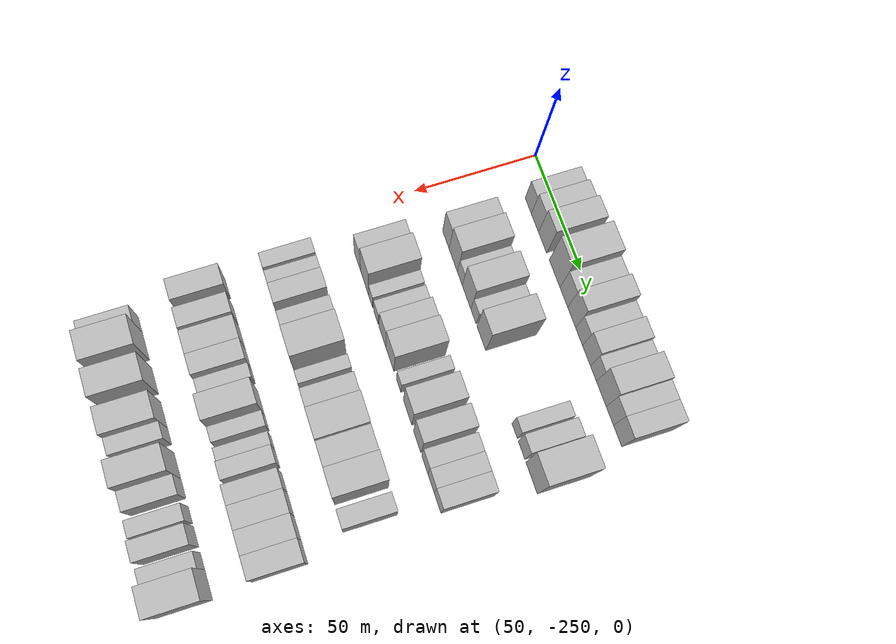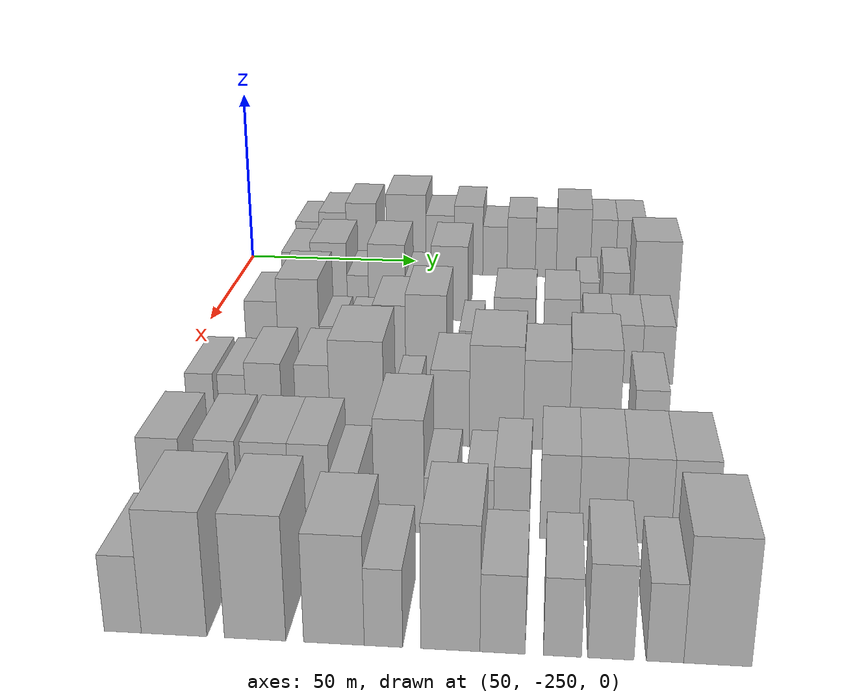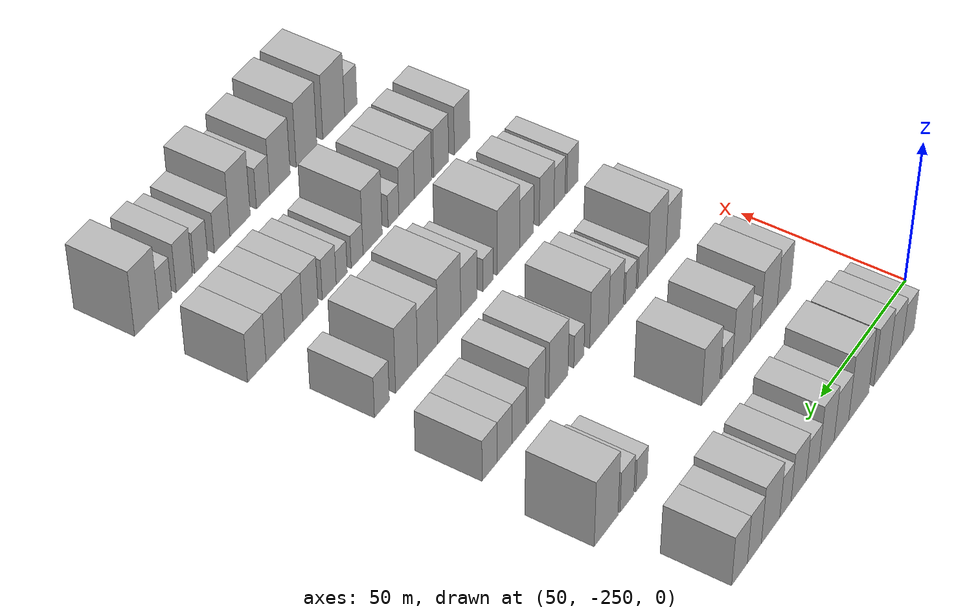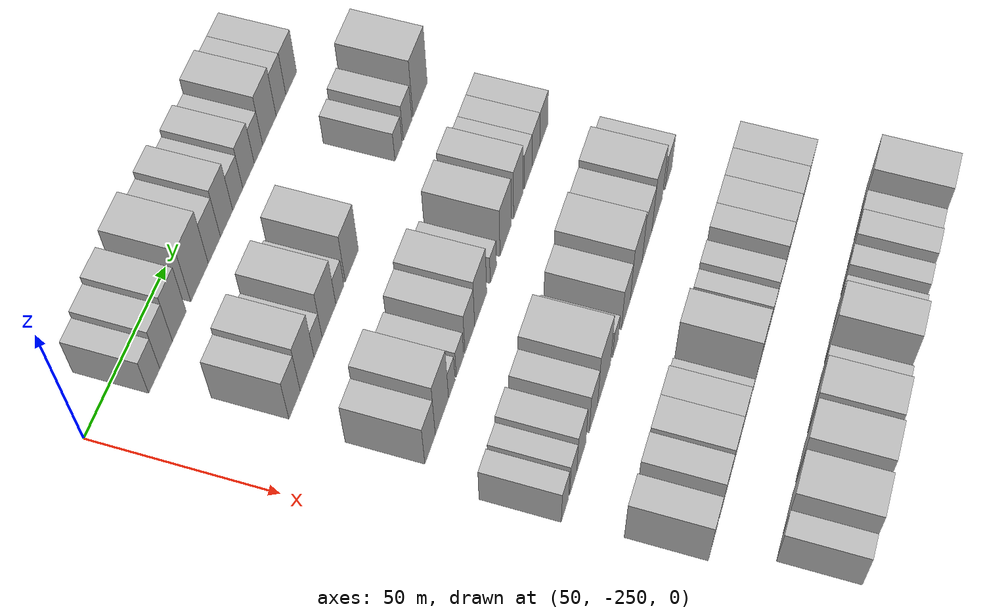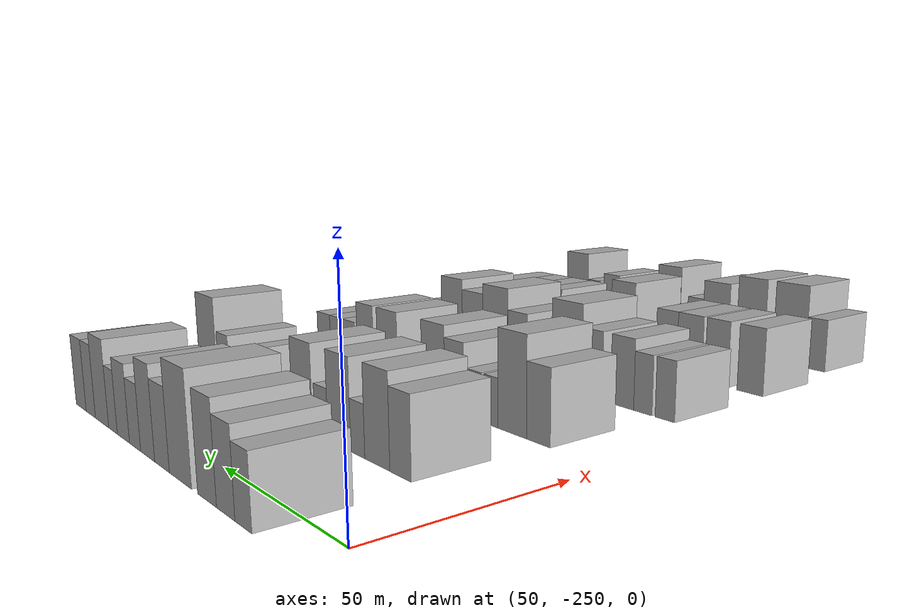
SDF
<sdf version="1.6">
 <world name="default">
  <model name="building_35">
   <static>1</static>
   <pose>50.0000 -230.8784 0 0.000000 0.000000 0.000000</pose>
   <link name="link">
    <pose>0 0 7.50 0 0 0</pose>
    <collision name="collision"><geometry><box><size>20.0000 6.9451 15.0000</size></box></geometry></collision>
    <visual name="visual">
     <cast_shadows>0</cast_shadows>
     <geometry><box><size>20.0000 6.9451 15.0000</size></box></geometry>
     <material>
      <script>
       <uri>model://HANNAS_wall/materials/scripts</uri>
       <uri>model://HANNAS_wall/materials/textures</uri>
       <name>vrc/HANNAS_wall</name>
      </script>
     </material>
    </visual>
   </link>
  </model>
  <model name="building_36">
   <static>1</static>
   <pose>50.0000 -223.3864 0 0.000000 0.000000 0.000000</pose>
   <link name="link">
    <pose>0 0 9.00 0 0 0</pose>
    <collision name="collision"><geometry><box><size>20.0000 8.0389 18.0000</size></box></geometry></collision>
    <visual name="visual">
     <cast_shadows>0</cast_shadows>
     <geometry><box><size>20.0000 8.0389 18.0000</size></box></geometry>
     <material>
      <script>
       <uri>model://HANNAS_wall/materials/scripts</uri>
       <uri>model://HANNAS_wall/materials/textures</uri>
       <name>vrc/HANNAS_wall</name>
      </script>
     </material>
    </visual>
   </link>
  </model>
  <model name="building_37">
   <static>1</static>
   <pose>50.0000 -214.9334 0 0.000000 0.000000 0.000000</pose>
   <link name="link">
    <pose>0 0 10.50 0 0 0</pose>
    <collision name="collision"><geometry><box><size>20.0000 8.8670 21.0000</size></box></geometry></collision>
    <visual name="visual">
     <cast_shadows>0</cast_shadows>
     <geometry><box><size>20.0000 8.8670 21.0000</size></box></geometry>
     <material>
      <script>
       <uri>model://HANNAS_wall/materials/scripts</uri>
       <uri>model://HANNAS_wall/materials/textures</uri>
       <name>vrc/HANNAS_wall</name>
      </script>
     </material>
    </visual>
   </link>
  </model>
  <model name="building_38">
   <static>1</static>
   <pose>50.0000 -201.6796 0 0.000000 0.000000 0.000000</pose>
   <link name="link">
    <pose>0 0 12.00 0 0 0</pose>
    <collision name="collision"><geometry><box><size>20.0000 11.6407 24.0000</size></box></geometry></collision>
    <visual name="visual">
     <cast_shadows>0</cast_shadows>
     <geometry><box><size>20.0000 11.6407 24.0000</size></box></geometry>
     <material>
      <script>
       <uri>model://HANNAS_wall/materials/scripts</uri>
       <uri>model://HANNAS_wall/materials/textures</uri>
       <name>vrc/HANNAS_wall</name>
      </script>
     </material>
    </visual>
   </link>
  </model>
  <model name="building_39">
   <static>1</static>
   <pose>50.0000 -191.7165 0 0.000000 0.000000 0.000000</pose>
   <link name="link">
    <pose>0 0 9.00 0 0 0</pose>
    <collision name="collision"><geometry><box><size>20.0000 8.2855 18.0000</size></box></geometry></collision>
    <visual name="visual">
     <cast_shadows>0</cast_shadows>
     <geometry><box><size>20.0000 8.2855 18.0000</size></box></geometry>
     <material>
      <script>
       <uri>model://HANNAS_wall/materials/scripts</uri>
       <uri>model://HANNAS_wall/materials/textures</uri>
       <name>vrc/HANNAS_wall</name>
      </script>
     </material>
    </visual>
   </link>
  </model>
  <model name="building_40">
   <static>1</static>
   <pose>50.0000 -183.3514 0 0.000000 0.000000 0.000000</pose>
   <link name="link">
    <pose>0 0 10.50 0 0 0</pose>
    <collision name="collision"><geometry><box><size>20.0000 8.4446 21.0000</size></box></geometry></collision>
    <visual name="visual">
     <cast_shadows>0</cast_shadows>
     <geometry><box><size>20.0000 8.4446 21.0000</size></box></geometry>
     <material>
      <script>
       <uri>model://HANNAS_wall/materials/scripts</uri>
       <uri>model://HANNAS_wall/materials/textures</uri>
       <name>vrc/HANNAS_wall</name>
      </script>
     </material>
    </visual>
   </link>
  </model>
  <model name="building_41">
   <static>1</static>
   <pose>50.0000 -175.5534 0 0.000000 0.000000 0.000000</pose>
   <link name="link">
    <pose>0 0 7.50 0 0 0</pose>
    <collision name="collision"><geometry><box><size>20.0000 7.1515 15.0000</size></box></geometry></collision>
    <visual name="visual">
     <cast_shadows>0</cast_shadows>
     <geometry><box><size>20.0000 7.1515 15.0000</size></box></geometry>
     <material>
      <script>
       <uri>model://HANNAS_wall/materials/scripts</uri>
       <uri>model://HANNAS_wall/materials/textures</uri>
       <name>vrc/HANNAS_wall</name>
      </script>
     </material>
    </visual>
   </link>
  </model>
  <model name="building_42">
   <static>1</static>
   <pose>50.0000 -167.8641 0 0.000000 0.000000 0.000000</pose>
   <link name="link">
    <pose>0 0 9.00 0 0 0</pose>
    <collision name="collision"><geometry><box><size>20.0000 8.2270 18.0000</size></box></geometry></collision>
    <visual name="visual">
     <cast_shadows>0</cast_shadows>
     <geometry><box><size>20.0000 8.2270 18.0000</size></box></geometry>
     <material>
      <script>
       <uri>model://HANNAS_wall/materials/scripts</uri>
       <uri>model://HANNAS_wall/materials/textures</uri>
       <name>vrc/HANNAS_wall</name>
      </script>
     </material>
    </visual>
   </link>
  </model>
  <model name="building_43">
   <static>1</static>
   <pose>50.0000 -160.6959 0 0.000000 0.000000 0.000000</pose>
   <link name="link">
    <pose>0 0 7.50 0 0 0</pose>
    <collision name="collision"><geometry><box><size>20.0000 6.1093 15.0000</size></box></geometry></collision>
    <visual name="visual">
     <cast_shadows>0</cast_shadows>
     <geometry><box><size>20.0000 6.1093 15.0000</size></box></geometry>
     <material>
      <script>
       <uri>model://HANNAS_wall/materials/scripts</uri>
       <uri>model://HANNAS_wall/materials/textures</uri>
       <name>vrc/HANNAS_wall</name>
      </script>
     </material>
    </visual>
   </link>
  </model>
  <model name="building_44">
   <static>1</static>
   <pose>50.0000 -152.6926 0 0.000000 0.000000 0.000000</pose>
   <link name="link">
    <pose>0 0 10.50 0 0 0</pose>
    <collision name="collision"><geometry><box><size>20.0000 9.8974 21.0000</size></box></geometry></collision>
    <visual name="visual">
     <cast_shadows>0</cast_shadows>
     <geometry><box><size>20.0000 9.8974 21.0000</size></box></geometry>
     <material>
      <script>
       <uri>model://HANNAS_wall/materials/scripts</uri>
       <uri>model://HANNAS_wall/materials/textures</uri>
       <name>vrc/HANNAS_wall</name>
      </script>
     </material>
    </visual>
   </link>
  </model>
  <model name="building_45">
   <static>1</static>
   <pose>50.0000 -144.0795 0 0.000000 0.000000 0.000000</pose>
   <link name="link">
    <pose>0 0 9.00 0 0 0</pose>
    <collision name="collision"><geometry><box><size>20.0000 7.3288 18.0000</size></box></geometry></collision>
    <visual name="visual">
     <cast_shadows>0</cast_shadows>
     <geometry><box><size>20.0000 7.3288 18.0000</size></box></geometry>
     <material>
      <script>
       <uri>model://HANNAS_wall/materials/scripts</uri>
       <uri>model://HANNAS_wall/materials/textures</uri>
       <name>vrc/HANNAS_wall</name>
      </script>
     </material>
    </visual>
   </link>
  </model>
  <model name="building_46">
   <static>1</static>
   <pose>50.0000 -136.3169 0 0.000000 0.000000 0.000000</pose>
   <link name="link">
    <pose>0 0 9.00 0 0 0</pose>
    <collision name="collision"><geometry><box><size>20.0000 8.1964 18.0000</size></box></geometry></collision>
    <visual name="visual">
     <cast_shadows>0</cast_shadows>
     <geometry><box><size>20.0000 8.1964 18.0000</size></box></geometry>
     <material>
      <script>
       <uri>model://HANNAS_wall/materials/scripts</uri>
       <uri>model://HANNAS_wall/materials/textures</uri>
       <name>vrc/HANNAS_wall</name>
      </script>
     </material>
    </visual>
   </link>
  </model>
  <model name="building_160">
   <static>1</static>
   <pose>85.0000 -227.2100 0 0.000000 0.000000 0.000000</pose>
   <link name="link">
    <pose>0 0 9.00 0 0 0</pose>
    <collision name="collision"><geometry><box><size>20.0000 7.7865 18.0000</size></box></geometry></collision>
    <visual name="visual">
     <cast_shadows>0</cast_shadows>
     <geometry><box><size>20.0000 7.7865 18.0000</size></box></geometry>
     <material>
      <script>
       <uri>model://HANNAS_wall/materials/scripts</uri>
       <uri>model://HANNAS_wall/materials/textures</uri>
       <name>vrc/HANNAS_wall</name>
      </script>
     </material>
    </visual>
   </link>
  </model>
  <model name="building_161">
   <static>1</static>
   <pose>85.0000 -218.4707 0 0.000000 0.000000 0.000000</pose>
   <link name="link">
    <pose>0 0 10.50 0 0 0</pose>
    <collision name="collision"><geometry><box><size>20.0000 9.6920 21.0000</size></box></geometry></collision>
    <visual name="visual">
     <cast_shadows>0</cast_shadows>
     <geometry><box><size>20.0000 9.6920 21.0000</size></box></geometry>
     <material>
      <script>
       <uri>model://HANNAS_wall/materials/scripts</uri>
       <uri>model://HANNAS_wall/materials/textures</uri>
       <name>vrc/HANNAS_wall</name>
      </script>
     </material>
    </visual>
   </link>
  </model>
  <model name="building_162">
   <static>1</static>
   <pose>85.0000 -210.7383 0 0.000000 0.000000 0.000000</pose>
   <link name="link">
    <pose>0 0 6.00 0 0 0</pose>
    <collision name="collision"><geometry><box><size>20.0000 5.7727 12.0000</size></box></geometry></collision>
    <visual name="visual">
     <cast_shadows>0</cast_shadows>
     <geometry><box><size>20.0000 5.7727 12.0000</size></box></geometry>
     <material>
      <script>
       <uri>model://HANNAS_wall/materials/scripts</uri>
       <uri>model://HANNAS_wall/materials/textures</uri>
       <name>vrc/HANNAS_wall</name>
      </script>
     </material>
    </visual>
   </link>
  </model>
  <model name="building_163">
   <static>1</static>
   <pose>85.0000 -202.8919 0 0.000000 0.000000 0.000000</pose>
   <link name="link">
    <pose>0 0 10.50 0 0 0</pose>
    <collision name="collision"><geometry><box><size>20.0000 9.9202 21.0000</size></box></geometry></collision>
    <visual name="visual">
     <cast_shadows>0</cast_shadows>
     <geometry><box><size>20.0000 9.9202 21.0000</size></box></geometry>
     <material>
      <script>
       <uri>model://HANNAS_wall/materials/scripts</uri>
       <uri>model://HANNAS_wall/materials/textures</uri>
       <name>vrc/HANNAS_wall</name>
      </script>
     </material>
    </visual>
   </link>
  </model>
  <model name="building_164">
   <static>1</static>
   <pose>85.0000 -194.9571 0 0.000000 0.000000 0.000000</pose>
   <link name="link">
    <pose>0 0 6.00 0 0 0</pose>
    <collision name="collision"><geometry><box><size>20.0000 5.9493 12.0000</size></box></geometry></collision>
    <visual name="visual">
     <cast_shadows>0</cast_shadows>
     <geometry><box><size>20.0000 5.9493 12.0000</size></box></geometry>
     <material>
      <script>
       <uri>model://HANNAS_wall/materials/scripts</uri>
       <uri>model://HANNAS_wall/materials/textures</uri>
       <name>vrc/HANNAS_wall</name>
      </script>
     </material>
    </visual>
   </link>
  </model>
  <model name="building_165">
   <static>1</static>
   <pose>85.0000 -186.0331 0 0.000000 0.000000 0.000000</pose>
   <link name="link">
    <pose>0 0 10.50 0 0 0</pose>
    <collision name="collision"><geometry><box><size>20.0000 9.8986 21.0000</size></box></geometry></collision>
    <visual name="visual">
     <cast_shadows>0</cast_shadows>
     <geometry><box><size>20.0000 9.8986 21.0000</size></box></geometry>
     <material>
      <script>
       <uri>model://HANNAS_wall/materials/scripts</uri>
       <uri>model://HANNAS_wall/materials/textures</uri>
       <name>vrc/HANNAS_wall</name>
      </script>
     </material>
    </visual>
   </link>
  </model>
  <model name="building_166">
   <static>1</static>
   <pose>85.0000 -149.3991 0 0.000000 0.000000 0.000000</pose>
   <link name="link">
    <pose>0 0 6.00 0 0 0</pose>
    <collision name="collision"><geometry><box><size>20.0000 5.7898 12.0000</size></box></geometry></collision>
    <visual name="visual">
     <cast_shadows>0</cast_shadows>
     <geometry><box><size>20.0000 5.7898 12.0000</size></box></geometry>
     <material>
      <script>
       <uri>model://HANNAS_wall/materials/scripts</uri>
       <uri>model://HANNAS_wall/materials/textures</uri>
       <name>vrc/HANNAS_wall</name>
      </script>
     </material>
    </visual>
   </link>
  </model>
  <model name="building_167">
   <static>1</static>
   <pose>85.0000 -141.9743 0 0.000000 0.000000 0.000000</pose>
   <link name="link">
    <pose>0 0 7.50 0 0 0</pose>
    <collision name="collision"><geometry><box><size>20.0000 7.0597 15.0000</size></box></geometry></collision>
    <visual name="visual">
     <cast_shadows>0</cast_shadows>
     <geometry><box><size>20.0000 7.0597 15.0000</size></box></geometry>
     <material>
      <script>
       <uri>model://HANNAS_wall/materials/scripts</uri>
       <uri>model://HANNAS_wall/materials/textures</uri>
       <name>vrc/HANNAS_wall</name>
      </script>
     </material>
    </visual>
   </link>
  </model>
  <model name="building_168">
   <static>1</static>
   <pose>85.0000 -131.4744 0 0.000000 0.000000 0.000000</pose>
   <link name="link">
    <pose>0 0 12.00 0 0 0</pose>
    <collision name="collision"><geometry><box><size>20.0000 11.9401 24.0000</size></box></geometry></collision>
    <visual name="visual">
     <cast_shadows>0</cast_shadows>
     <geometry><box><size>20.0000 11.9401 24.0000</size></box></geometry>
     <material>
      <script>
       <uri>model://HANNAS_wall/materials/scripts</uri>
       <uri>model://HANNAS_wall/materials/textures</uri>
       <name>vrc/HANNAS_wall</name>
      </script>
     </material>
    </visual>
   </link>
  </model>
  <model name="building_283">
   <static>1</static>
   <pose>120.0000 -229.0043 0 0.000000 0.000000 0.000000</pose>
   <link name="link">
    <pose>0 0 9.00 0 0 0</pose>
    <collision name="collision"><geometry><box><size>20.0000 7.9378 18.0000</size></box></geometry></collision>
    <visual name="visual">
     <cast_shadows>0</cast_shadows>
     <geometry><box><size>20.0000 7.9378 18.0000</size></box></geometry>
     <material>
      <script>
       <uri>model://HANNAS_wall/materials/scripts</uri>
       <uri>model://HANNAS_wall/materials/textures</uri>
       <name>vrc/HANNAS_wall</name>
      </script>
     </material>
    </visual>
   </link>
  </model>
  <model name="building_284">
   <static>1</static>
   <pose>120.0000 -219.9170 0 0.000000 0.000000 0.000000</pose>
   <link name="link">
    <pose>0 0 12.00 0 0 0</pose>
    <collision name="collision"><geometry><box><size>20.0000 10.2368 24.0000</size></box></geometry></collision>
    <visual name="visual">
     <cast_shadows>0</cast_shadows>
     <geometry><box><size>20.0000 10.2368 24.0000</size></box></geometry>
     <material>
      <script>
       <uri>model://HANNAS_wall/materials/scripts</uri>
       <uri>model://HANNAS_wall/materials/textures</uri>
       <name>vrc/HANNAS_wall</name>
      </script>
     </material>
    </visual>
   </link>
  </model>
  <model name="building_285">
   <static>1</static>
   <pose>120.0000 -212.2229 0 0.000000 0.000000 0.000000</pose>
   <link name="link">
    <pose>0 0 6.00 0 0 0</pose>
    <collision name="collision"><geometry><box><size>20.0000 5.1515 12.0000</size></box></geometry></collision>
    <visual name="visual">
     <cast_shadows>0</cast_shadows>
     <geometry><box><size>20.0000 5.1515 12.0000</size></box></geometry>
     <material>
      <script>
       <uri>model://HANNAS_wall/materials/scripts</uri>
       <uri>model://HANNAS_wall/materials/textures</uri>
       <name>vrc/HANNAS_wall</name>
      </script>
     </material>
    </visual>
   </link>
  </model>
  <model name="building_286">
   <static>1</static>
   <pose>120.0000 -205.7032 0 0.000000 0.000000 0.000000</pose>
   <link name="link">
    <pose>0 0 6.00 0 0 0</pose>
    <collision name="collision"><geometry><box><size>20.0000 5.8879 12.0000</size></box></geometry></collision>
    <visual name="visual">
     <cast_shadows>0</cast_shadows>
     <geometry><box><size>20.0000 5.8879 12.0000</size></box></geometry>
     <material>
      <script>
       <uri>model://HANNAS_wall/materials/scripts</uri>
       <uri>model://HANNAS_wall/materials/textures</uri>
       <name>vrc/HANNAS_wall</name>
      </script>
     </material>
    </visual>
   </link>
  </model>
  <model name="building_287">
   <static>1</static>
   <pose>120.0000 -197.7941 0 0.000000 0.000000 0.000000</pose>
   <link name="link">
    <pose>0 0 9.00 0 0 0</pose>
    <collision name="collision"><geometry><box><size>20.0000 7.9301 18.0000</size></box></geometry></collision>
    <visual name="visual">
     <cast_shadows>0</cast_shadows>
     <geometry><box><size>20.0000 7.9301 18.0000</size></box></geometry>
     <material>
      <script>
       <uri>model://HANNAS_wall/materials/scripts</uri>
       <uri>model://HANNAS_wall/materials/textures</uri>
       <name>vrc/HANNAS_wall</name>
      </script>
     </material>
    </visual>
   </link>
  </model>
  <model name="building_288">
   <static>1</static>
   <pose>120.0000 -188.8305 0 0.000000 0.000000 0.000000</pose>
   <link name="link">
    <pose>0 0 10.50 0 0 0</pose>
    <collision name="collision"><geometry><box><size>20.0000 9.9971 21.0000</size></box></geometry></collision>
    <visual name="visual">
     <cast_shadows>0</cast_shadows>
     <geometry><box><size>20.0000 9.9971 21.0000</size></box></geometry>
     <material>
      <script>
       <uri>model://HANNAS_wall/materials/scripts</uri>
       <uri>model://HANNAS_wall/materials/textures</uri>
       <name>vrc/HANNAS_wall</name>
      </script>
     </material>
    </visual>
   </link>
  </model>
  <model name="building_289">
   <static>1</static>
   <pose>120.0000 -178.1801 0 0.000000 0.000000 0.000000</pose>
   <link name="link">
    <pose>0 0 6.00 0 0 0</pose>
    <collision name="collision"><geometry><box><size>20.0000 5.3039 12.0000</size></box></geometry></collision>
    <visual name="visual">
     <cast_shadows>0</cast_shadows>
     <geometry><box><size>20.0000 5.3039 12.0000</size></box></geometry>
     <material>
      <script>
       <uri>model://HANNAS_wall/materials/scripts</uri>
       <uri>model://HANNAS_wall/materials/textures</uri>
       <name>vrc/HANNAS_wall</name>
      </script>
     </material>
    </visual>
   </link>
  </model>
  <model name="building_290">
   <static>1</static>
   <pose>120.0000 -167.6020 0 0.000000 0.000000 0.000000</pose>
   <link name="link">
    <pose>0 0 10.50 0 0 0</pose>
    <collision name="collision"><geometry><box><size>20.0000 9.8523 21.0000</size></box></geometry></collision>
    <visual name="visual">
     <cast_shadows>0</cast_shadows>
     <geometry><box><size>20.0000 9.8523 21.0000</size></box></geometry>
     <material>
      <script>
       <uri>model://HANNAS_wall/materials/scripts</uri>
       <uri>model://HANNAS_wall/materials/textures</uri>
       <name>vrc/HANNAS_wall</name>
      </script>
     </material>
    </visual>
   </link>
  </model>
  <model name="building_291">
   <static>1</static>
   <pose>120.0000 -156.4090 0 0.000000 0.000000 0.000000</pose>
   <link name="link">
    <pose>0 0 10.50 0 0 0</pose>
    <collision name="collision"><geometry><box><size>20.0000 8.5337 21.0000</size></box></geometry></collision>
    <visual name="visual">
     <cast_shadows>0</cast_shadows>
     <geometry><box><size>20.0000 8.5337 21.0000</size></box></geometry>
     <material>
      <script>
       <uri>model://HANNAS_wall/materials/scripts</uri>
       <uri>model://HANNAS_wall/materials/textures</uri>
       <name>vrc/HANNAS_wall</name>
      </script>
     </material>
    </visual>
   </link>
  </model>
  <model name="building_292">
   <static>1</static>
   <pose>120.0000 -147.6357 0 0.000000 0.000000 0.000000</pose>
   <link name="link">
    <pose>0 0 7.50 0 0 0</pose>
    <collision name="collision"><geometry><box><size>20.0000 7.0130 15.0000</size></box></geometry></collision>
    <visual name="visual">
     <cast_shadows>0</cast_shadows>
     <geometry><box><size>20.0000 7.0130 15.0000</size></box></geometry>
     <material>
      <script>
       <uri>model://HANNAS_wall/materials/scripts</uri>
       <uri>model://HANNAS_wall/materials/textures</uri>
       <name>vrc/HANNAS_wall</name>
      </script>
     </material>
    </visual>
   </link>
  </model>
  <model name="building_293">
   <static>1</static>
   <pose>120.0000 -140.5326 0 0.000000 0.000000 0.000000</pose>
   <link name="link">
    <pose>0 0 7.50 0 0 0</pose>
    <collision name="collision"><geometry><box><size>20.0000 7.1932 15.0000</size></box></geometry></collision>
    <visual name="visual">
     <cast_shadows>0</cast_shadows>
     <geometry><box><size>20.0000 7.1932 15.0000</size></box></geometry>
     <material>
      <script>
       <uri>model://HANNAS_wall/materials/scripts</uri>
       <uri>model://HANNAS_wall/materials/textures</uri>
       <name>vrc/HANNAS_wall</name>
      </script>
     </material>
    </visual>
   </link>
  </model>
  <model name="building_294">
   <static>1</static>
   <pose>120.0000 -133.2050 0 0.000000 0.000000 0.000000</pose>
   <link name="link">
    <pose>0 0 7.50 0 0 0</pose>
    <collision name="collision"><geometry><box><size>20.0000 7.4619 15.0000</size></box></geometry></collision>
    <visual name="visual">
     <cast_shadows>0</cast_shadows>
     <geometry><box><size>20.0000 7.4619 15.0000</size></box></geometry>
     <material>
      <script>
       <uri>model://HANNAS_wall/materials/scripts</uri>
       <uri>model://HANNAS_wall/materials/textures</uri>
       <name>vrc/HANNAS_wall</name>
      </script>
     </material>
    </visual>
   </link>
  </model>
  <model name="building_405">
   <static>1</static>
   <pose>155.0000 -234.8605 0 0.000000 0.000000 0.000000</pose>
   <link name="link">
    <pose>0 0 7.50 0 0 0</pose>
    <collision name="collision"><geometry><box><size>20.0000 6.1392 15.0000</size></box></geometry></collision>
    <visual name="visual">
     <cast_shadows>0</cast_shadows>
     <geometry><box><size>20.0000 6.1392 15.0000</size></box></geometry>
     <material>
      <script>
       <uri>model://HANNAS_wall/materials/scripts</uri>
       <uri>model://HANNAS_wall/materials/textures</uri>
       <name>vrc/HANNAS_wall</name>
      </script>
     </material>
    </visual>
   </link>
  </model>
  <model name="building_406">
   <static>1</static>
   <pose>155.0000 -227.7650 0 0.000000 0.000000 0.000000</pose>
   <link name="link">
    <pose>0 0 7.50 0 0 0</pose>
    <collision name="collision"><geometry><box><size>20.0000 6.0517 15.0000</size></box></geometry></collision>
    <visual name="visual">
     <cast_shadows>0</cast_shadows>
     <geometry><box><size>20.0000 6.0517 15.0000</size></box></geometry>
     <material>
      <script>
       <uri>model://HANNAS_wall/materials/scripts</uri>
       <uri>model://HANNAS_wall/materials/textures</uri>
       <name>vrc/HANNAS_wall</name>
      </script>
     </material>
    </visual>
   </link>
  </model>
  <model name="building_407">
   <static>1</static>
   <pose>155.0000 -220.7673 0 0.000000 0.000000 0.000000</pose>
   <link name="link">
    <pose>0 0 9.00 0 0 0</pose>
    <collision name="collision"><geometry><box><size>20.0000 7.9437 18.0000</size></box></geometry></collision>
    <visual name="visual">
     <cast_shadows>0</cast_shadows>
     <geometry><box><size>20.0000 7.9437 18.0000</size></box></geometry>
     <material>
      <script>
       <uri>model://HANNAS_wall/materials/scripts</uri>
       <uri>model://HANNAS_wall/materials/textures</uri>
       <name>vrc/HANNAS_wall</name>
      </script>
     </material>
    </visual>
   </link>
  </model>
  <model name="building_408">
   <static>1</static>
   <pose>155.0000 -210.0617 0 0.000000 0.000000 0.000000</pose>
   <link name="link">
    <pose>0 0 9.00 0 0 0</pose>
    <collision name="collision"><geometry><box><size>20.0000 7.4677 18.0000</size></box></geometry></collision>
    <visual name="visual">
     <cast_shadows>0</cast_shadows>
     <geometry><box><size>20.0000 7.4677 18.0000</size></box></geometry>
     <material>
      <script>
       <uri>model://HANNAS_wall/materials/scripts</uri>
       <uri>model://HANNAS_wall/materials/textures</uri>
       <name>vrc/HANNAS_wall</name>
      </script>
     </material>
    </visual>
   </link>
  </model>
  <model name="building_409">
   <static>1</static>
   <pose>155.0000 -200.4073 0 0.000000 0.000000 0.000000</pose>
   <link name="link">
    <pose>0 0 12.00 0 0 0</pose>
    <collision name="collision"><geometry><box><size>20.0000 11.8410 24.0000</size></box></geometry></collision>
    <visual name="visual">
     <cast_shadows>0</cast_shadows>
     <geometry><box><size>20.0000 11.8410 24.0000</size></box></geometry>
     <material>
      <script>
       <uri>model://HANNAS_wall/materials/scripts</uri>
       <uri>model://HANNAS_wall/materials/textures</uri>
       <name>vrc/HANNAS_wall</name>
      </script>
     </material>
    </visual>
   </link>
  </model>
  <model name="building_410">
   <static>1</static>
   <pose>155.0000 -189.8670 0 0.000000 0.000000 0.000000</pose>
   <link name="link">
    <pose>0 0 6.00 0 0 0</pose>
    <collision name="collision"><geometry><box><size>20.0000 5.2397 12.0000</size></box></geometry></collision>
    <visual name="visual">
     <cast_shadows>0</cast_shadows>
     <geometry><box><size>20.0000 5.2397 12.0000</size></box></geometry>
     <material>
      <script>
       <uri>model://HANNAS_wall/materials/scripts</uri>
       <uri>model://HANNAS_wall/materials/textures</uri>
       <name>vrc/HANNAS_wall</name>
      </script>
     </material>
    </visual>
   </link>
  </model>
  <model name="building_411">
   <static>1</static>
   <pose>155.0000 -180.0900 0 0.000000 0.000000 0.000000</pose>
   <link name="link">
    <pose>0 0 9.00 0 0 0</pose>
    <collision name="collision"><geometry><box><size>20.0000 8.3143 18.0000</size></box></geometry></collision>
    <visual name="visual">
     <cast_shadows>0</cast_shadows>
     <geometry><box><size>20.0000 8.3143 18.0000</size></box></geometry>
     <material>
      <script>
       <uri>model://HANNAS_wall/materials/scripts</uri>
       <uri>model://HANNAS_wall/materials/textures</uri>
       <name>vrc/HANNAS_wall</name>
      </script>
     </material>
    </visual>
   </link>
  </model>
  <model name="building_412">
   <static>1</static>
   <pose>155.0000 -170.1205 0 0.000000 0.000000 0.000000</pose>
   <link name="link">
    <pose>0 0 12.00 0 0 0</pose>
    <collision name="collision"><geometry><box><size>20.0000 11.6247 24.0000</size></box></geometry></collision>
    <visual name="visual">
     <cast_shadows>0</cast_shadows>
     <geometry><box><size>20.0000 11.6247 24.0000</size></box></geometry>
     <material>
      <script>
       <uri>model://HANNAS_wall/materials/scripts</uri>
       <uri>model://HANNAS_wall/materials/textures</uri>
       <name>vrc/HANNAS_wall</name>
      </script>
     </material>
    </visual>
   </link>
  </model>
  <model name="building_413">
   <static>1</static>
   <pose>155.0000 -159.3878 0 0.000000 0.000000 0.000000</pose>
   <link name="link">
    <pose>0 0 10.50 0 0 0</pose>
    <collision name="collision"><geometry><box><size>20.0000 9.8406 21.0000</size></box></geometry></collision>
    <visual name="visual">
     <cast_shadows>0</cast_shadows>
     <geometry><box><size>20.0000 9.8406 21.0000</size></box></geometry>
     <material>
      <script>
       <uri>model://HANNAS_wall/materials/scripts</uri>
       <uri>model://HANNAS_wall/materials/textures</uri>
       <name>vrc/HANNAS_wall</name>
      </script>
     </material>
    </visual>
   </link>
  </model>
  <model name="building_414">
   <static>1</static>
   <pose>155.0000 -149.0961 0 0.000000 0.000000 0.000000</pose>
   <link name="link">
    <pose>0 0 12.00 0 0 0</pose>
    <collision name="collision"><geometry><box><size>20.0000 10.7428 24.0000</size></box></geometry></collision>
    <visual name="visual">
     <cast_shadows>0</cast_shadows>
     <geometry><box><size>20.0000 10.7428 24.0000</size></box></geometry>
     <material>
      <script>
       <uri>model://HANNAS_wall/materials/scripts</uri>
       <uri>model://HANNAS_wall/materials/textures</uri>
       <name>vrc/HANNAS_wall</name>
      </script>
     </material>
    </visual>
   </link>
  </model>
  <model name="building_415">
   <static>1</static>
   <pose>155.0000 -137.1660 0 0.000000 0.000000 0.000000</pose>
   <link name="link">
    <pose>0 0 7.50 0 0 0</pose>
    <collision name="collision"><geometry><box><size>20.0000 7.1173 15.0000</size></box></geometry></collision>
    <visual name="visual">
     <cast_shadows>0</cast_shadows>
     <geometry><box><size>20.0000 7.1173 15.0000</size></box></geometry>
     <material>
      <script>
       <uri>model://HANNAS_wall/materials/scripts</uri>
       <uri>model://HANNAS_wall/materials/textures</uri>
       <name>vrc/HANNAS_wall</name>
      </script>
     </material>
    </visual>
   </link>
  </model>
  <model name="building_535">
   <static>1</static>
   <pose>190.0000 -233.2653 0 0.000000 0.000000 0.000000</pose>
   <link name="link">
    <pose>0 0 9.00 0 0 0</pose>
    <collision name="collision"><geometry><box><size>20.0000 8.2413 18.0000</size></box></geometry></collision>
    <visual name="visual">
     <cast_shadows>0</cast_shadows>
     <geometry><box><size>20.0000 8.2413 18.0000</size></box></geometry>
     <material>
      <script>
       <uri>model://HANNAS_wall/materials/scripts</uri>
       <uri>model://HANNAS_wall/materials/textures</uri>
       <name>vrc/HANNAS_wall</name>
      </script>
     </material>
    </visual>
   </link>
  </model>
  <model name="building_536">
   <static>1</static>
   <pose>190.0000 -222.1916 0 0.000000 0.000000 0.000000</pose>
   <link name="link">
    <pose>0 0 9.00 0 0 0</pose>
    <collision name="collision"><geometry><box><size>20.0000 7.9062 18.0000</size></box></geometry></collision>
    <visual name="visual">
     <cast_shadows>0</cast_shadows>
     <geometry><box><size>20.0000 7.9062 18.0000</size></box></geometry>
     <material>
      <script>
       <uri>model://HANNAS_wall/materials/scripts</uri>
       <uri>model://HANNAS_wall/materials/textures</uri>
       <name>vrc/HANNAS_wall</name>
      </script>
     </material>
    </visual>
   </link>
  </model>
  <model name="building_537">
   <static>1</static>
   <pose>190.0000 -212.7422 0 0.000000 0.000000 0.000000</pose>
   <link name="link">
    <pose>0 0 9.00 0 0 0</pose>
    <collision name="collision"><geometry><box><size>20.0000 8.9927 18.0000</size></box></geometry></collision>
    <visual name="visual">
     <cast_shadows>0</cast_shadows>
     <geometry><box><size>20.0000 8.9927 18.0000</size></box></geometry>
     <material>
      <script>
       <uri>model://HANNAS_wall/materials/scripts</uri>
       <uri>model://HANNAS_wall/materials/textures</uri>
       <name>vrc/HANNAS_wall</name>
      </script>
     </material>
    </visual>
   </link>
  </model>
  <model name="building_538">
   <static>1</static>
   <pose>190.0000 -204.2703 0 0.000000 0.000000 0.000000</pose>
   <link name="link">
    <pose>0 0 9.00 0 0 0</pose>
    <collision name="collision"><geometry><box><size>20.0000 7.9510 18.0000</size></box></geometry></collision>
    <visual name="visual">
     <cast_shadows>0</cast_shadows>
     <geometry><box><size>20.0000 7.9510 18.0000</size></box></geometry>
     <material>
      <script>
       <uri>model://HANNAS_wall/materials/scripts</uri>
       <uri>model://HANNAS_wall/materials/textures</uri>
       <name>vrc/HANNAS_wall</name>
      </script>
     </material>
    </visual>
   </link>
  </model>
  <model name="building_539">
   <static>1</static>
   <pose>190.0000 -197.5406 0 0.000000 0.000000 0.000000</pose>
   <link name="link">
    <pose>0 0 6.00 0 0 0</pose>
    <collision name="collision"><geometry><box><size>20.0000 5.5085 12.0000</size></box></geometry></collision>
    <visual name="visual">
     <cast_shadows>0</cast_shadows>
     <geometry><box><size>20.0000 5.5085 12.0000</size></box></geometry>
     <material>
      <script>
       <uri>model://HANNAS_wall/materials/scripts</uri>
       <uri>model://HANNAS_wall/materials/textures</uri>
       <name>vrc/HANNAS_wall</name>
      </script>
     </material>
    </visual>
   </link>
  </model>
  <model name="building_540">
   <static>1</static>
   <pose>190.0000 -186.9784 0 0.000000 0.000000 0.000000</pose>
   <link name="link">
    <pose>0 0 12.00 0 0 0</pose>
    <collision name="collision"><geometry><box><size>20.0000 9.6159 24.0000</size></box></geometry></collision>
    <visual name="visual">
     <cast_shadows>0</cast_shadows>
     <geometry><box><size>20.0000 9.6159 24.0000</size></box></geometry>
     <material>
      <script>
       <uri>model://HANNAS_wall/materials/scripts</uri>
       <uri>model://HANNAS_wall/materials/textures</uri>
       <name>vrc/HANNAS_wall</name>
      </script>
     </material>
    </visual>
   </link>
  </model>
  <model name="building_541">
   <static>1</static>
   <pose>190.0000 -179.2424 0 0.000000 0.000000 0.000000</pose>
   <link name="link">
    <pose>0 0 6.00 0 0 0</pose>
    <collision name="collision"><geometry><box><size>20.0000 5.8562 12.0000</size></box></geometry></collision>
    <visual name="visual">
     <cast_shadows>0</cast_shadows>
     <geometry><box><size>20.0000 5.8562 12.0000</size></box></geometry>
     <material>
      <script>
       <uri>model://HANNAS_wall/materials/scripts</uri>
       <uri>model://HANNAS_wall/materials/textures</uri>
       <name>vrc/HANNAS_wall</name>
      </script>
     </material>
    </visual>
   </link>
  </model>
  <model name="building_542">
   <static>1</static>
   <pose>190.0000 -171.6233 0 0.000000 0.000000 0.000000</pose>
   <link name="link">
    <pose>0 0 6.00 0 0 0</pose>
    <collision name="collision"><geometry><box><size>20.0000 5.3820 12.0000</size></box></geometry></collision>
    <visual name="visual">
     <cast_shadows>0</cast_shadows>
     <geometry><box><size>20.0000 5.3820 12.0000</size></box></geometry>
     <material>
      <script>
       <uri>model://HANNAS_wall/materials/scripts</uri>
       <uri>model://HANNAS_wall/materials/textures</uri>
       <name>vrc/HANNAS_wall</name>
      </script>
     </material>
    </visual>
   </link>
  </model>
  <model name="building_543">
   <static>1</static>
   <pose>190.0000 -165.5424 0 0.000000 0.000000 0.000000</pose>
   <link name="link">
    <pose>0 0 7.50 0 0 0</pose>
    <collision name="collision"><geometry><box><size>20.0000 6.7796 15.0000</size></box></geometry></collision>
    <visual name="visual">
     <cast_shadows>0</cast_shadows>
     <geometry><box><size>20.0000 6.7796 15.0000</size></box></geometry>
     <material>
      <script>
       <uri>model://HANNAS_wall/materials/scripts</uri>
       <uri>model://HANNAS_wall/materials/textures</uri>
       <name>vrc/HANNAS_wall</name>
      </script>
     </material>
    </visual>
   </link>
  </model>
  <model name="building_544">
   <static>1</static>
   <pose>190.0000 -156.4721 0 0.000000 0.000000 0.000000</pose>
   <link name="link">
    <pose>0 0 9.00 0 0 0</pose>
    <collision name="collision"><geometry><box><size>20.0000 7.3611 18.0000</size></box></geometry></collision>
    <visual name="visual">
     <cast_shadows>0</cast_shadows>
     <geometry><box><size>20.0000 7.3611 18.0000</size></box></geometry>
     <material>
      <script>
       <uri>model://HANNAS_wall/materials/scripts</uri>
       <uri>model://HANNAS_wall/materials/textures</uri>
       <name>vrc/HANNAS_wall</name>
      </script>
     </material>
    </visual>
   </link>
  </model>
  <model name="building_545">
   <static>1</static>
   <pose>190.0000 -148.4499 0 0.000000 0.000000 0.000000</pose>
   <link name="link">
    <pose>0 0 9.00 0 0 0</pose>
    <collision name="collision"><geometry><box><size>20.0000 8.6833 18.0000</size></box></geometry></collision>
    <visual name="visual">
     <cast_shadows>0</cast_shadows>
     <geometry><box><size>20.0000 8.6833 18.0000</size></box></geometry>
     <material>
      <script>
       <uri>model://HANNAS_wall/materials/scripts</uri>
       <uri>model://HANNAS_wall/materials/textures</uri>
       <name>vrc/HANNAS_wall</name>
      </script>
     </material>
    </visual>
   </link>
  </model>
  <model name="building_546">
   <static>1</static>
   <pose>190.0000 -139.7780 0 0.000000 0.000000 0.000000</pose>
   <link name="link">
    <pose>0 0 9.00 0 0 0</pose>
    <collision name="collision"><geometry><box><size>20.0000 8.6604 18.0000</size></box></geometry></collision>
    <visual name="visual">
     <cast_shadows>0</cast_shadows>
     <geometry><box><size>20.0000 8.6604 18.0000</size></box></geometry>
     <material>
      <script>
       <uri>model://HANNAS_wall/materials/scripts</uri>
       <uri>model://HANNAS_wall/materials/textures</uri>
       <name>vrc/HANNAS_wall</name>
      </script>
     </material>
    </visual>
   </link>
  </model>
  <model name="building_547">
   <static>1</static>
   <pose>190.0000 -131.1743 0 0.000000 0.000000 0.000000</pose>
   <link name="link">
    <pose>0 0 9.00 0 0 0</pose>
    <collision name="collision"><geometry><box><size>20.0000 8.5470 18.0000</size></box></geometry></collision>
    <visual name="visual">
     <cast_shadows>0</cast_shadows>
     <geometry><box><size>20.0000 8.5470 18.0000</size></box></geometry>
     <material>
      <script>
       <uri>model://HANNAS_wall/materials/scripts</uri>
       <uri>model://HANNAS_wall/materials/textures</uri>
       <name>vrc/HANNAS_wall</name>
      </script>
     </material>
    </visual>
   </link>
  </model>
  <model name="building_670">
   <static>1</static>
   <pose>225.0000 -229.7470 0 0.000000 0.000000 0.000000</pose>
   <link name="link">
    <pose>0 0 7.50 0 0 0</pose>
    <collision name="collision"><geometry><box><size>20.0000 6.4271 15.0000</size></box></geometry></collision>
    <visual name="visual">
     <cast_shadows>0</cast_shadows>
     <geometry><box><size>20.0000 6.4271 15.0000</size></box></geometry>
     <material>
      <script>
       <uri>model://HANNAS_wall/materials/scripts</uri>
       <uri>model://HANNAS_wall/materials/textures</uri>
       <name>vrc/HANNAS_wall</name>
      </script>
     </material>
    </visual>
   </link>
  </model>
  <model name="building_671">
   <static>1</static>
   <pose>225.0000 -220.9063 0 0.000000 0.000000 0.000000</pose>
   <link name="link">
    <pose>0 0 12.00 0 0 0</pose>
    <collision name="collision"><geometry><box><size>20.0000 11.2543 24.0000</size></box></geometry></collision>
    <visual name="visual">
     <cast_shadows>0</cast_shadows>
     <geometry><box><size>20.0000 11.2543 24.0000</size></box></geometry>
     <material>
      <script>
       <uri>model://HANNAS_wall/materials/scripts</uri>
       <uri>model://HANNAS_wall/materials/textures</uri>
       <name>vrc/HANNAS_wall</name>
      </script>
     </material>
    </visual>
   </link>
  </model>
  <model name="building_672">
   <static>1</static>
   <pose>225.0000 -207.0556 0 0.000000 0.000000 0.000000</pose>
   <link name="link">
    <pose>0 0 12.00 0 0 0</pose>
    <collision name="collision"><geometry><box><size>20.0000 10.4470 24.0000</size></box></geometry></collision>
    <visual name="visual">
     <cast_shadows>0</cast_shadows>
     <geometry><box><size>20.0000 10.4470 24.0000</size></box></geometry>
     <material>
      <script>
       <uri>model://HANNAS_wall/materials/scripts</uri>
       <uri>model://HANNAS_wall/materials/textures</uri>
       <name>vrc/HANNAS_wall</name>
      </script>
     </material>
    </visual>
   </link>
  </model>
  <model name="building_673">
   <static>1</static>
   <pose>225.0000 -193.7263 0 0.000000 0.000000 0.000000</pose>
   <link name="link">
    <pose>0 0 10.50 0 0 0</pose>
    <collision name="collision"><geometry><box><size>20.0000 10.2116 21.0000</size></box></geometry></collision>
    <visual name="visual">
     <cast_shadows>0</cast_shadows>
     <geometry><box><size>20.0000 10.2116 21.0000</size></box></geometry>
     <material>
      <script>
       <uri>model://HANNAS_wall/materials/scripts</uri>
       <uri>model://HANNAS_wall/materials/textures</uri>
       <name>vrc/HANNAS_wall</name>
      </script>
     </material>
    </visual>
   </link>
  </model>
  <model name="building_674">
   <static>1</static>
   <pose>225.0000 -185.4101 0 0.000000 0.000000 0.000000</pose>
   <link name="link">
    <pose>0 0 7.50 0 0 0</pose>
    <collision name="collision"><geometry><box><size>20.0000 6.4209 15.0000</size></box></geometry></collision>
    <visual name="visual">
     <cast_shadows>0</cast_shadows>
     <geometry><box><size>20.0000 6.4209 15.0000</size></box></geometry>
     <material>
      <script>
       <uri>model://HANNAS_wall/materials/scripts</uri>
       <uri>model://HANNAS_wall/materials/textures</uri>
       <name>vrc/HANNAS_wall</name>
      </script>
     </material>
    </visual>
   </link>
  </model>
  <model name="building_675">
   <static>1</static>
   <pose>225.0000 -174.2814 0 0.000000 0.000000 0.000000</pose>
   <link name="link">
    <pose>0 0 12.00 0 0 0</pose>
    <collision name="collision"><geometry><box><size>20.0000 9.8366 24.0000</size></box></geometry></collision>
    <visual name="visual">
     <cast_shadows>0</cast_shadows>
     <geometry><box><size>20.0000 9.8366 24.0000</size></box></geometry>
     <material>
      <script>
       <uri>model://HANNAS_wall/materials/scripts</uri>
       <uri>model://HANNAS_wall/materials/textures</uri>
       <name>vrc/HANNAS_wall</name>
      </script>
     </material>
    </visual>
   </link>
  </model>
  <model name="building_676">
   <static>1</static>
   <pose>225.0000 -165.6506 0 0.000000 0.000000 0.000000</pose>
   <link name="link">
    <pose>0 0 7.50 0 0 0</pose>
    <collision name="collision"><geometry><box><size>20.0000 7.4249 15.0000</size></box></geometry></collision>
    <visual name="visual">
     <cast_shadows>0</cast_shadows>
     <geometry><box><size>20.0000 7.4249 15.0000</size></box></geometry>
     <material>
      <script>
       <uri>model://HANNAS_wall/materials/scripts</uri>
       <uri>model://HANNAS_wall/materials/textures</uri>
       <name>vrc/HANNAS_wall</name>
      </script>
     </material>
    </visual>
   </link>
  </model>
  <model name="building_677">
   <static>1</static>
   <pose>225.0000 -155.8205 0 0.000000 0.000000 0.000000</pose>
   <link name="link">
    <pose>0 0 7.50 0 0 0</pose>
    <collision name="collision"><geometry><box><size>20.0000 6.2352 15.0000</size></box></geometry></collision>
    <visual name="visual">
     <cast_shadows>0</cast_shadows>
     <geometry><box><size>20.0000 6.2352 15.0000</size></box></geometry>
     <material>
      <script>
       <uri>model://HANNAS_wall/materials/scripts</uri>
       <uri>model://HANNAS_wall/materials/textures</uri>
       <name>vrc/HANNAS_wall</name>
      </script>
     </material>
    </visual>
   </link>
  </model>
  <model name="building_678">
   <static>1</static>
   <pose>225.0000 -147.9359 0 0.000000 0.000000 0.000000</pose>
   <link name="link">
    <pose>0 0 9.00 0 0 0</pose>
    <collision name="collision"><geometry><box><size>20.0000 7.5340 18.0000</size></box></geometry></collision>
    <visual name="visual">
     <cast_shadows>0</cast_shadows>
     <geometry><box><size>20.0000 7.5340 18.0000</size></box></geometry>
     <material>
      <script>
       <uri>model://HANNAS_wall/materials/scripts</uri>
       <uri>model://HANNAS_wall/materials/textures</uri>
       <name>vrc/HANNAS_wall</name>
      </script>
     </material>
    </visual>
   </link>
  </model>
  <model name="building_679">
   <static>1</static>
   <pose>225.0000 -139.1502 0 0.000000 0.000000 0.000000</pose>
   <link name="link">
    <pose>0 0 7.50 0 0 0</pose>
    <collision name="collision"><geometry><box><size>20.0000 6.0374 15.0000</size></box></geometry></collision>
    <visual name="visual">
     <cast_shadows>0</cast_shadows>
     <geometry><box><size>20.0000 6.0374 15.0000</size></box></geometry>
     <material>
      <script>
       <uri>model://HANNAS_wall/materials/scripts</uri>
       <uri>model://HANNAS_wall/materials/textures</uri>
       <name>vrc/HANNAS_wall</name>
      </script>
     </material>
    </visual>
   </link>
  </model>
  <model name="building_680">
   <static>1</static>
   <pose>225.0000 -130.6684 0 0.000000 0.000000 0.000000</pose>
   <link name="link">
    <pose>0 0 12.00 0 0 0</pose>
    <collision name="collision"><geometry><box><size>20.0000 10.9263 24.0000</size></box></geometry></collision>
    <visual name="visual">
     <cast_shadows>0</cast_shadows>
     <geometry><box><size>20.0000 10.9263 24.0000</size></box></geometry>
     <material>
      <script>
       <uri>model://HANNAS_wall/materials/scripts</uri>
       <uri>model://HANNAS_wall/materials/textures</uri>
       <name>vrc/HANNAS_wall</name>
      </script>
     </material>
    </visual>
   </link>
  </model>
 </world>
</sdf>
